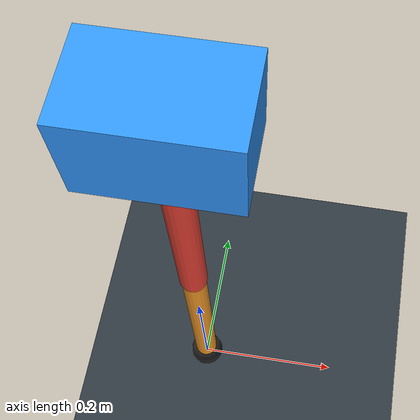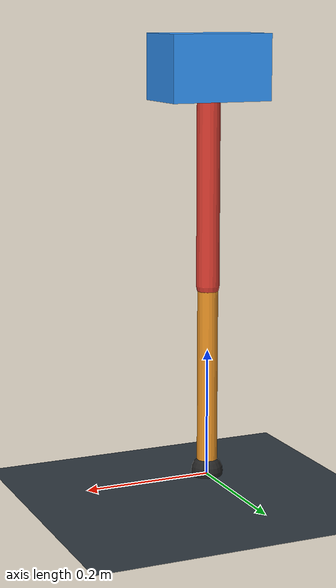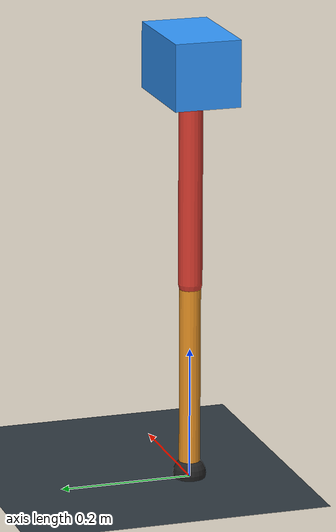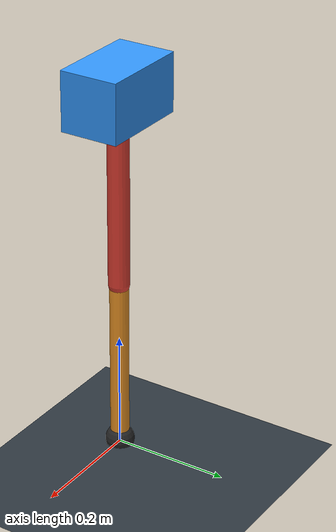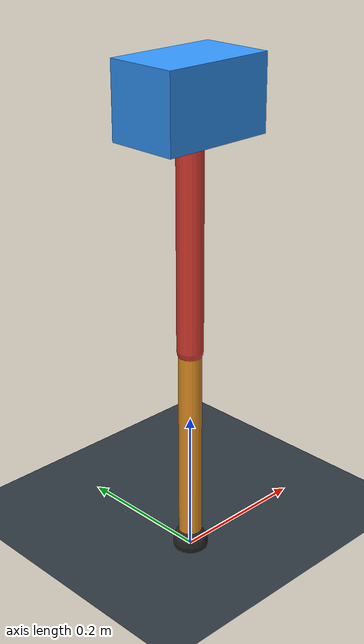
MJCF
<mujoco model="single_axis_two_bar">
  <compiler angle="radian" inertiafromgeom="true"/>
  <option timestep="0.001" integrator="implicitfast" gravity="0 0 -9.81"/>
  <default>
    <joint damping="0.08"/>
    <geom friction="1.2 0.01 0.0001" condim="3"/>
  </default>
  <worldbody>
    <geom name="floor" type="plane" size="5 5 0.1" rgba="0.18 0.22 0.25 1"/>
    <body name="carriage" pos="0 0 0.6365709108034555">
      <joint name="pole_slide" type="slide" axis="0 0 1"/>
      <geom name="payload" type="box" size="0.08 0.05 0.05" mass="2.4350919504656314" rgba="0.2 0.6 1 1"/>
      <body name="thigh" pos="0 0 0">
        <joint name="hip" type="hinge" axis="0 1 0"/>
        <geom name="thigh_link" type="capsule" fromto="0 0 0 0 0 -0.3343681982201045" size="0.018" mass="0.2382417595177458" rgba="0.9 0.25 0.2 1"/>
        <body name="shank" pos="0 0 -0.3343681982201045">
          <joint name="knee" type="hinge" axis="0 1 0"/>
          <geom name="shank_link" type="capsule" fromto="0 0 0 0 0 -0.29611727683500433" size="0.016" mass="0.21098747258953007" rgba="0.95 0.6 0.15 1"/>
          <geom name="foot" type="sphere" pos="0 0 -0.29611727683500433" size="0.025" mass="0.03" rgba="0.15 0.15 0.15 1"/>
          <site name="toe" pos="0 0 -0.29611727683500433" size="0.008"/>
        </body>
      </body>
    </body>
  </worldbody>
  <actuator>
    <motor name="hip_motor" joint="hip" ctrlrange="-40.061395479638456 40.061395479638456"/>
    <motor name="knee_motor" joint="knee" ctrlrange="-99.63853460564599 99.63853460564599"/>
  </actuator>
</mujoco>
